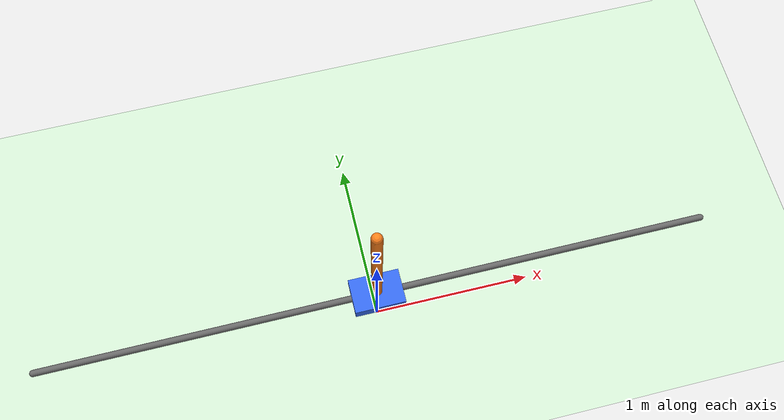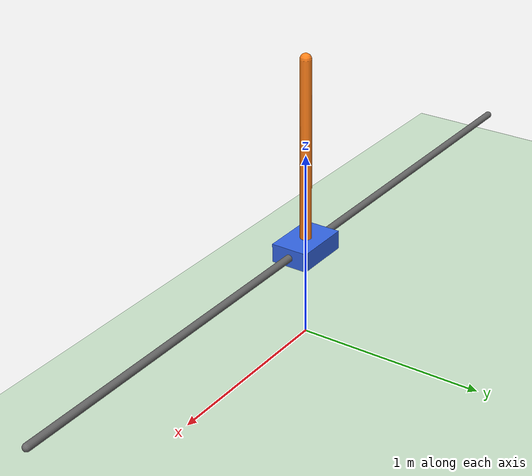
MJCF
<mujoco model="palo_escoba">
  <option timestep="0.01"/>
  <worldbody>
    <light pos="0 0 4"/>
    <geom name="suelo" type="plane" size="4 2 0.1" rgba=".8 .9 .8 1"/>
    <geom name="rail" type="capsule" fromto="-2 0 0.5 2 0 0.5" size="0.02" rgba=".4 .4 .4 1" contype="0" conaffinity="0"/>
    <body name="carro" pos="0 0 0.5">
      <joint name="deslizar" type="slide" axis="1 0 0" range="-1.8 1.8" limited="true" damping="0.1"/>
      <geom name="carro" type="box" size="0.15 0.1 0.05" mass="1" rgba=".2 .4 .9 1" contype="0" conaffinity="0"/>
      <body name="palo" pos="0 0 0">
        <joint name="bisagra" type="hinge" axis="0 1 0" damping="0.01"/>
        <geom name="palo" type="capsule" fromto="0 0 0 0 0 1" size="0.03" mass="0.5" rgba="1 .5 .1 1" contype="0" conaffinity="0"/>
      </body>
    </body>
  </worldbody>
  <actuator>
    <motor name="empuje" joint="deslizar" gear="10" ctrlrange="-1 1" ctrllimited="true"/>
  </actuator>
</mujoco>
